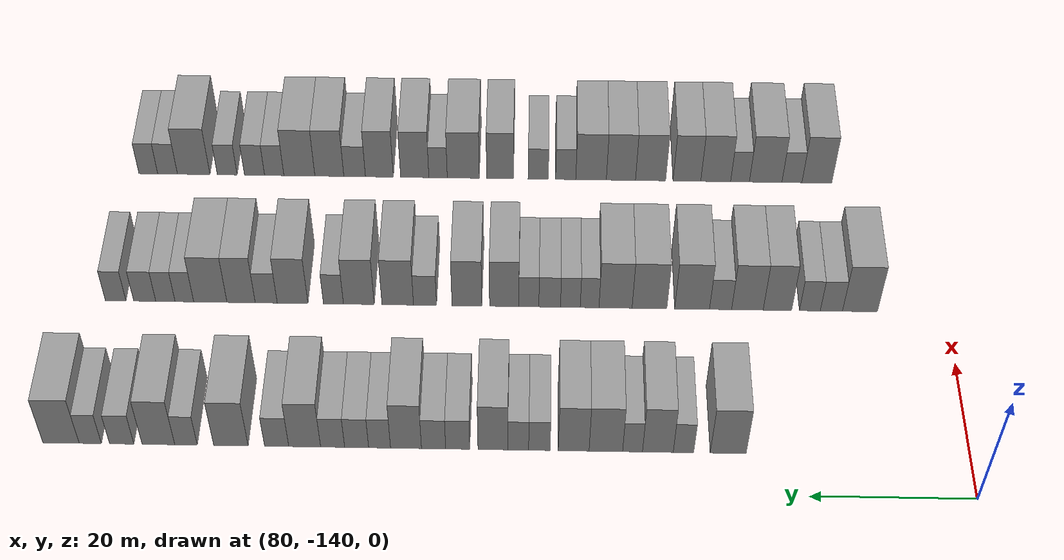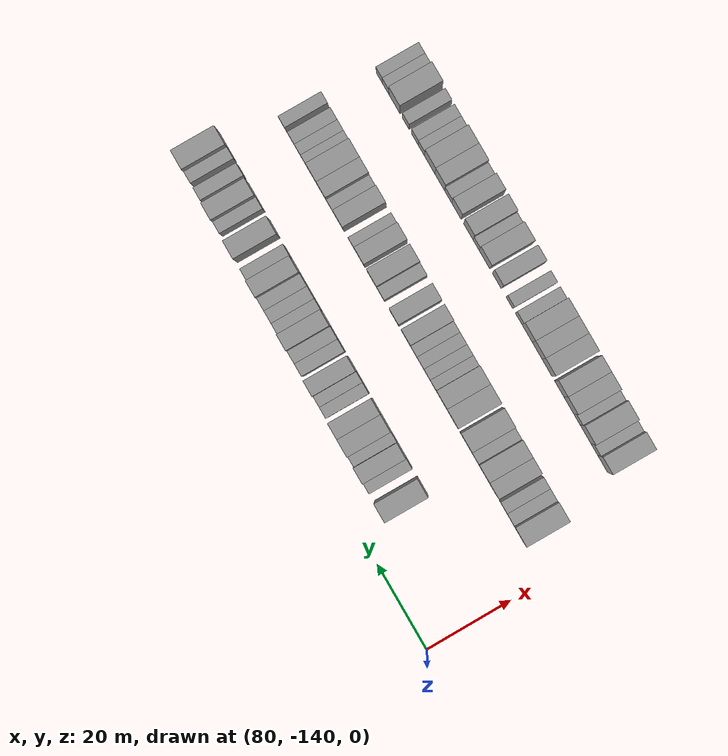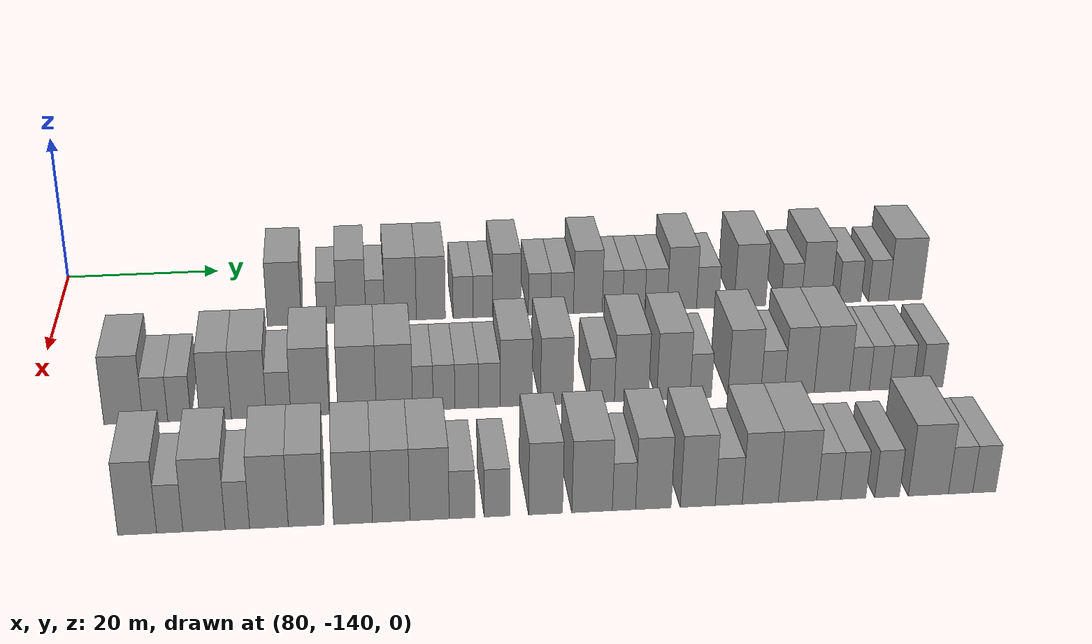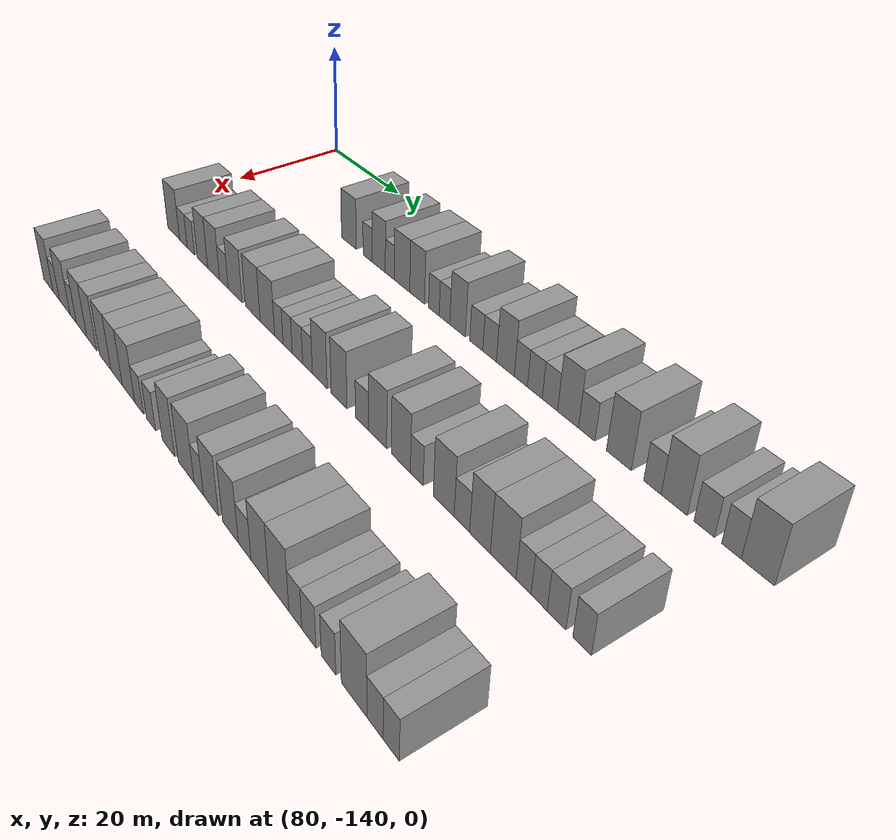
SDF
<sdf version="1.6">
 <world name="default">
  <model name="building_624">
   <static>1</static>
   <pose>91.0000 -110.6982 0 0.000000 0.000000 0.000000</pose>
   <link name="link">
    <pose>0 0 4.50 0 0 0</pose>
    <collision name="collision"><geometry><box><size>10.0000 4.3491 9.0000</size></box></geometry></collision>
    <visual name="visual">
     <cast_shadows>0</cast_shadows>
     <geometry><box><size>10.0000 4.3491 9.0000</size></box></geometry>
     <material>
      <script>
       <uri>model://grey_wall/materials/scripts</uri>
       <uri>model://grey_wall/materials/textures</uri>
       <name>vrc/grey_wall</name>
      </script>
     </material>
    </visual>
   </link>
  </model>
  <model name="building_625">
   <static>1</static>
   <pose>91.0000 -105.2833 0 0.000000 0.000000 0.000000</pose>
   <link name="link">
    <pose>0 0 3.00 0 0 0</pose>
    <collision name="collision"><geometry><box><size>10.0000 2.4807 6.0000</size></box></geometry></collision>
    <visual name="visual">
     <cast_shadows>0</cast_shadows>
     <geometry><box><size>10.0000 2.4807 6.0000</size></box></geometry>
     <material>
      <script>
       <uri>model://grey_wall/materials/scripts</uri>
       <uri>model://grey_wall/materials/textures</uri>
       <name>vrc/grey_wall</name>
      </script>
     </material>
    </visual>
   </link>
  </model>
  <model name="building_626">
   <static>1</static>
   <pose>91.0000 -102.1800 0 0.000000 0.000000 0.000000</pose>
   <link name="link">
    <pose>0 0 4.50 0 0 0</pose>
    <collision name="collision"><geometry><box><size>10.0000 3.7258 9.0000</size></box></geometry></collision>
    <visual name="visual">
     <cast_shadows>0</cast_shadows>
     <geometry><box><size>10.0000 3.7258 9.0000</size></box></geometry>
     <material>
      <script>
       <uri>model://grey_wall/materials/scripts</uri>
       <uri>model://grey_wall/materials/textures</uri>
       <name>vrc/grey_wall</name>
      </script>
     </material>
    </visual>
   </link>
  </model>
  <model name="building_627">
   <static>1</static>
   <pose>91.0000 -99.1149 0 0.000000 0.000000 0.000000</pose>
   <link name="link">
    <pose>0 0 3.00 0 0 0</pose>
    <collision name="collision"><geometry><box><size>10.0000 2.4045 6.0000</size></box></geometry></collision>
    <visual name="visual">
     <cast_shadows>0</cast_shadows>
     <geometry><box><size>10.0000 2.4045 6.0000</size></box></geometry>
     <material>
      <script>
       <uri>model://grey_wall/materials/scripts</uri>
       <uri>model://grey_wall/materials/textures</uri>
       <name>vrc/grey_wall</name>
      </script>
     </material>
    </visual>
   </link>
  </model>
  <model name="building_628">
   <static>1</static>
   <pose>91.0000 -95.8795 0 0.000000 0.000000 0.000000</pose>
   <link name="link">
    <pose>0 0 4.50 0 0 0</pose>
    <collision name="collision"><geometry><box><size>10.0000 4.0663 9.0000</size></box></geometry></collision>
    <visual name="visual">
     <cast_shadows>0</cast_shadows>
     <geometry><box><size>10.0000 4.0663 9.0000</size></box></geometry>
     <material>
      <script>
       <uri>model://grey_wall/materials/scripts</uri>
       <uri>model://grey_wall/materials/textures</uri>
       <name>vrc/grey_wall</name>
      </script>
     </material>
    </visual>
   </link>
  </model>
  <model name="building_629">
   <static>1</static>
   <pose>91.0000 -91.9789 0 0.000000 0.000000 0.000000</pose>
   <link name="link">
    <pose>0 0 4.50 0 0 0</pose>
    <collision name="collision"><geometry><box><size>10.0000 3.7349 9.0000</size></box></geometry></collision>
    <visual name="visual">
     <cast_shadows>0</cast_shadows>
     <geometry><box><size>10.0000 3.7349 9.0000</size></box></geometry>
     <material>
      <script>
       <uri>model://grey_wall/materials/scripts</uri>
       <uri>model://grey_wall/materials/textures</uri>
       <name>vrc/grey_wall</name>
      </script>
     </material>
    </visual>
   </link>
  </model>
  <model name="building_630">
   <static>1</static>
   <pose>91.0000 -87.8144 0 0.000000 0.000000 0.000000</pose>
   <link name="link">
    <pose>0 0 3.00 0 0 0</pose>
    <collision name="collision"><geometry><box><size>10.0000 2.5943 6.0000</size></box></geometry></collision>
    <visual name="visual">
     <cast_shadows>0</cast_shadows>
     <geometry><box><size>10.0000 2.5943 6.0000</size></box></geometry>
     <material>
      <script>
       <uri>model://grey_wall/materials/scripts</uri>
       <uri>model://grey_wall/materials/textures</uri>
       <name>vrc/grey_wall</name>
      </script>
     </material>
    </visual>
   </link>
  </model>
  <model name="building_631">
   <static>1</static>
   <pose>91.0000 -85.2562 0 0.000000 0.000000 0.000000</pose>
   <link name="link">
    <pose>0 0 3.00 0 0 0</pose>
    <collision name="collision"><geometry><box><size>10.0000 2.5220 6.0000</size></box></geometry></collision>
    <visual name="visual">
     <cast_shadows>0</cast_shadows>
     <geometry><box><size>10.0000 2.5220 6.0000</size></box></geometry>
     <material>
      <script>
       <uri>model://grey_wall/materials/scripts</uri>
       <uri>model://grey_wall/materials/textures</uri>
       <name>vrc/grey_wall</name>
      </script>
     </material>
    </visual>
   </link>
  </model>
  <model name="building_632">
   <static>1</static>
   <pose>91.0000 -82.1863 0 0.000000 0.000000 0.000000</pose>
   <link name="link">
    <pose>0 0 4.50 0 0 0</pose>
    <collision name="collision"><geometry><box><size>10.0000 3.6179 9.0000</size></box></geometry></collision>
    <visual name="visual">
     <cast_shadows>0</cast_shadows>
     <geometry><box><size>10.0000 3.6179 9.0000</size></box></geometry>
     <material>
      <script>
       <uri>model://grey_wall/materials/scripts</uri>
       <uri>model://grey_wall/materials/textures</uri>
       <name>vrc/grey_wall</name>
      </script>
     </material>
    </visual>
   </link>
  </model>
  <model name="building_633">
   <static>1</static>
   <pose>91.0000 -77.9174 0 0.000000 0.000000 0.000000</pose>
   <link name="link">
    <pose>0 0 3.00 0 0 0</pose>
    <collision name="collision"><geometry><box><size>10.0000 2.9199 6.0000</size></box></geometry></collision>
    <visual name="visual">
     <cast_shadows>0</cast_shadows>
     <geometry><box><size>10.0000 2.9199 6.0000</size></box></geometry>
     <material>
      <script>
       <uri>model://grey_wall/materials/scripts</uri>
       <uri>model://grey_wall/materials/textures</uri>
       <name>vrc/grey_wall</name>
      </script>
     </material>
    </visual>
   </link>
  </model>
  <model name="building_634">
   <static>1</static>
   <pose>91.0000 -74.9870 0 0.000000 0.000000 0.000000</pose>
   <link name="link">
    <pose>0 0 3.00 0 0 0</pose>
    <collision name="collision"><geometry><box><size>10.0000 2.9409 6.0000</size></box></geometry></collision>
    <visual name="visual">
     <cast_shadows>0</cast_shadows>
     <geometry><box><size>10.0000 2.9409 6.0000</size></box></geometry>
     <material>
      <script>
       <uri>model://grey_wall/materials/scripts</uri>
       <uri>model://grey_wall/materials/textures</uri>
       <name>vrc/grey_wall</name>
      </script>
     </material>
    </visual>
   </link>
  </model>
  <model name="building_635">
   <static>1</static>
   <pose>91.0000 -71.6371 0 0.000000 0.000000 0.000000</pose>
   <link name="link">
    <pose>0 0 4.50 0 0 0</pose>
    <collision name="collision"><geometry><box><size>10.0000 3.7589 9.0000</size></box></geometry></collision>
    <visual name="visual">
     <cast_shadows>0</cast_shadows>
     <geometry><box><size>10.0000 3.7589 9.0000</size></box></geometry>
     <material>
      <script>
       <uri>model://grey_wall/materials/scripts</uri>
       <uri>model://grey_wall/materials/textures</uri>
       <name>vrc/grey_wall</name>
      </script>
     </material>
    </visual>
   </link>
  </model>
  <model name="building_636">
   <static>1</static>
   <pose>91.0000 -68.4278 0 0.000000 0.000000 0.000000</pose>
   <link name="link">
    <pose>0 0 3.00 0 0 0</pose>
    <collision name="collision"><geometry><box><size>10.0000 2.6599 6.0000</size></box></geometry></collision>
    <visual name="visual">
     <cast_shadows>0</cast_shadows>
     <geometry><box><size>10.0000 2.6599 6.0000</size></box></geometry>
     <material>
      <script>
       <uri>model://grey_wall/materials/scripts</uri>
       <uri>model://grey_wall/materials/textures</uri>
       <name>vrc/grey_wall</name>
      </script>
     </material>
    </visual>
   </link>
  </model>
  <model name="building_637">
   <static>1</static>
   <pose>91.0000 -65.6392 0 0.000000 0.000000 0.000000</pose>
   <link name="link">
    <pose>0 0 3.00 0 0 0</pose>
    <collision name="collision"><geometry><box><size>10.0000 2.9174 6.0000</size></box></geometry></collision>
    <visual name="visual">
     <cast_shadows>0</cast_shadows>
     <geometry><box><size>10.0000 2.9174 6.0000</size></box></geometry>
     <material>
      <script>
       <uri>model://grey_wall/materials/scripts</uri>
       <uri>model://grey_wall/materials/textures</uri>
       <name>vrc/grey_wall</name>
      </script>
     </material>
    </visual>
   </link>
  </model>
  <model name="building_638">
   <static>1</static>
   <pose>91.0000 -62.7190 0 0.000000 0.000000 0.000000</pose>
   <link name="link">
    <pose>0 0 3.00 0 0 0</pose>
    <collision name="collision"><geometry><box><size>10.0000 2.9229 6.0000</size></box></geometry></collision>
    <visual name="visual">
     <cast_shadows>0</cast_shadows>
     <geometry><box><size>10.0000 2.9229 6.0000</size></box></geometry>
     <material>
      <script>
       <uri>model://grey_wall/materials/scripts</uri>
       <uri>model://grey_wall/materials/textures</uri>
       <name>vrc/grey_wall</name>
      </script>
     </material>
    </visual>
   </link>
  </model>
  <model name="building_639">
   <static>1</static>
   <pose>91.0000 -59.3203 0 0.000000 0.000000 0.000000</pose>
   <link name="link">
    <pose>0 0 4.50 0 0 0</pose>
    <collision name="collision"><geometry><box><size>10.0000 3.8744 9.0000</size></box></geometry></collision>
    <visual name="visual">
     <cast_shadows>0</cast_shadows>
     <geometry><box><size>10.0000 3.8744 9.0000</size></box></geometry>
     <material>
      <script>
       <uri>model://grey_wall/materials/scripts</uri>
       <uri>model://grey_wall/materials/textures</uri>
       <name>vrc/grey_wall</name>
      </script>
     </material>
    </visual>
   </link>
  </model>
  <model name="building_640">
   <static>1</static>
   <pose>91.0000 -55.9106 0 0.000000 0.000000 0.000000</pose>
   <link name="link">
    <pose>0 0 3.00 0 0 0</pose>
    <collision name="collision"><geometry><box><size>10.0000 2.9450 6.0000</size></box></geometry></collision>
    <visual name="visual">
     <cast_shadows>0</cast_shadows>
     <geometry><box><size>10.0000 2.9450 6.0000</size></box></geometry>
     <material>
      <script>
       <uri>model://grey_wall/materials/scripts</uri>
       <uri>model://grey_wall/materials/textures</uri>
       <name>vrc/grey_wall</name>
      </script>
     </material>
    </visual>
   </link>
  </model>
  <model name="building_641">
   <static>1</static>
   <pose>91.0000 -50.3419 0 0.000000 0.000000 0.000000</pose>
   <link name="link">
    <pose>0 0 4.50 0 0 0</pose>
    <collision name="collision"><geometry><box><size>10.0000 4.1923 9.0000</size></box></geometry></collision>
    <visual name="visual">
     <cast_shadows>0</cast_shadows>
     <geometry><box><size>10.0000 4.1923 9.0000</size></box></geometry>
     <material>
      <script>
       <uri>model://grey_wall/materials/scripts</uri>
       <uri>model://grey_wall/materials/textures</uri>
       <name>vrc/grey_wall</name>
      </script>
     </material>
    </visual>
   </link>
  </model>
  <model name="building_642">
   <static>1</static>
   <pose>91.0000 -44.8779 0 0.000000 0.000000 0.000000</pose>
   <link name="link">
    <pose>0 0 3.00 0 0 0</pose>
    <collision name="collision"><geometry><box><size>10.0000 2.7359 6.0000</size></box></geometry></collision>
    <visual name="visual">
     <cast_shadows>0</cast_shadows>
     <geometry><box><size>10.0000 2.7359 6.0000</size></box></geometry>
     <material>
      <script>
       <uri>model://grey_wall/materials/scripts</uri>
       <uri>model://grey_wall/materials/textures</uri>
       <name>vrc/grey_wall</name>
      </script>
     </material>
    </visual>
   </link>
  </model>
  <model name="building_643">
   <static>1</static>
   <pose>91.0000 -41.5169 0 0.000000 0.000000 0.000000</pose>
   <link name="link">
    <pose>0 0 4.50 0 0 0</pose>
    <collision name="collision"><geometry><box><size>10.0000 3.9860 9.0000</size></box></geometry></collision>
    <visual name="visual">
     <cast_shadows>0</cast_shadows>
     <geometry><box><size>10.0000 3.9860 9.0000</size></box></geometry>
     <material>
      <script>
       <uri>model://grey_wall/materials/scripts</uri>
       <uri>model://grey_wall/materials/textures</uri>
       <name>vrc/grey_wall</name>
      </script>
     </material>
    </visual>
   </link>
  </model>
  <model name="building_644">
   <static>1</static>
   <pose>91.0000 -37.0405 0 0.000000 0.000000 0.000000</pose>
   <link name="link">
    <pose>0 0 3.00 0 0 0</pose>
    <collision name="collision"><geometry><box><size>10.0000 2.9669 6.0000</size></box></geometry></collision>
    <visual name="visual">
     <cast_shadows>0</cast_shadows>
     <geometry><box><size>10.0000 2.9669 6.0000</size></box></geometry>
     <material>
      <script>
       <uri>model://grey_wall/materials/scripts</uri>
       <uri>model://grey_wall/materials/textures</uri>
       <name>vrc/grey_wall</name>
      </script>
     </material>
    </visual>
   </link>
  </model>
  <model name="building_645">
   <static>1</static>
   <pose>91.0000 -33.2021 0 0.000000 0.000000 0.000000</pose>
   <link name="link">
    <pose>0 0 3.00 0 0 0</pose>
    <collision name="collision"><geometry><box><size>10.0000 2.7098 6.0000</size></box></geometry></collision>
    <visual name="visual">
     <cast_shadows>0</cast_shadows>
     <geometry><box><size>10.0000 2.7098 6.0000</size></box></geometry>
     <material>
      <script>
       <uri>model://grey_wall/materials/scripts</uri>
       <uri>model://grey_wall/materials/textures</uri>
       <name>vrc/grey_wall</name>
      </script>
     </material>
    </visual>
   </link>
  </model>
  <model name="building_646">
   <static>1</static>
   <pose>91.0000 -29.6387 0 0.000000 0.000000 0.000000</pose>
   <link name="link">
    <pose>0 0 4.50 0 0 0</pose>
    <collision name="collision"><geometry><box><size>10.0000 4.4169 9.0000</size></box></geometry></collision>
    <visual name="visual">
     <cast_shadows>0</cast_shadows>
     <geometry><box><size>10.0000 4.4169 9.0000</size></box></geometry>
     <material>
      <script>
       <uri>model://grey_wall/materials/scripts</uri>
       <uri>model://grey_wall/materials/textures</uri>
       <name>vrc/grey_wall</name>
      </script>
     </material>
    </visual>
   </link>
  </model>
  <model name="building_807">
   <static>1</static>
   <pose>113.0000 -128.8501 0 0.000000 0.000000 0.000000</pose>
   <link name="link">
    <pose>0 0 4.50 0 0 0</pose>
    <collision name="collision"><geometry><box><size>10.0000 4.4764 9.0000</size></box></geometry></collision>
    <visual name="visual">
     <cast_shadows>0</cast_shadows>
     <geometry><box><size>10.0000 4.4764 9.0000</size></box></geometry>
     <material>
      <script>
       <uri>model://grey_wall/materials/scripts</uri>
       <uri>model://grey_wall/materials/textures</uri>
       <name>vrc/grey_wall</name>
      </script>
     </material>
    </visual>
   </link>
  </model>
  <model name="building_808">
   <static>1</static>
   <pose>113.0000 -125.1879 0 0.000000 0.000000 0.000000</pose>
   <link name="link">
    <pose>0 0 3.00 0 0 0</pose>
    <collision name="collision"><geometry><box><size>10.0000 2.8480 6.0000</size></box></geometry></collision>
    <visual name="visual">
     <cast_shadows>0</cast_shadows>
     <geometry><box><size>10.0000 2.8480 6.0000</size></box></geometry>
     <material>
      <script>
       <uri>model://grey_wall/materials/scripts</uri>
       <uri>model://grey_wall/materials/textures</uri>
       <name>vrc/grey_wall</name>
      </script>
     </material>
    </visual>
   </link>
  </model>
  <model name="building_809">
   <static>1</static>
   <pose>113.0000 -122.4275 0 0.000000 0.000000 0.000000</pose>
   <link name="link">
    <pose>0 0 3.00 0 0 0</pose>
    <collision name="collision"><geometry><box><size>10.0000 2.6729 6.0000</size></box></geometry></collision>
    <visual name="visual">
     <cast_shadows>0</cast_shadows>
     <geometry><box><size>10.0000 2.6729 6.0000</size></box></geometry>
     <material>
      <script>
       <uri>model://grey_wall/materials/scripts</uri>
       <uri>model://grey_wall/materials/textures</uri>
       <name>vrc/grey_wall</name>
      </script>
     </material>
    </visual>
   </link>
  </model>
  <model name="building_810">
   <static>1</static>
   <pose>113.0000 -118.2631 0 0.000000 0.000000 0.000000</pose>
   <link name="link">
    <pose>0 0 4.50 0 0 0</pose>
    <collision name="collision"><geometry><box><size>10.0000 3.6558 9.0000</size></box></geometry></collision>
    <visual name="visual">
     <cast_shadows>0</cast_shadows>
     <geometry><box><size>10.0000 3.6558 9.0000</size></box></geometry>
     <material>
      <script>
       <uri>model://grey_wall/materials/scripts</uri>
       <uri>model://grey_wall/materials/textures</uri>
       <name>vrc/grey_wall</name>
      </script>
     </material>
    </visual>
   </link>
  </model>
  <model name="building_811">
   <static>1</static>
   <pose>113.0000 -114.4054 0 0.000000 0.000000 0.000000</pose>
   <link name="link">
    <pose>0 0 4.50 0 0 0</pose>
    <collision name="collision"><geometry><box><size>10.0000 4.0595 9.0000</size></box></geometry></collision>
    <visual name="visual">
     <cast_shadows>0</cast_shadows>
     <geometry><box><size>10.0000 4.0595 9.0000</size></box></geometry>
     <material>
      <script>
       <uri>model://grey_wall/materials/scripts</uri>
       <uri>model://grey_wall/materials/textures</uri>
       <name>vrc/grey_wall</name>
      </script>
     </material>
    </visual>
   </link>
  </model>
  <model name="building_812">
   <static>1</static>
   <pose>113.0000 -110.9566 0 0.000000 0.000000 0.000000</pose>
   <link name="link">
    <pose>0 0 3.00 0 0 0</pose>
    <collision name="collision"><geometry><box><size>10.0000 2.8381 6.0000</size></box></geometry></collision>
    <visual name="visual">
     <cast_shadows>0</cast_shadows>
     <geometry><box><size>10.0000 2.8381 6.0000</size></box></geometry>
     <material>
      <script>
       <uri>model://grey_wall/materials/scripts</uri>
       <uri>model://grey_wall/materials/textures</uri>
       <name>vrc/grey_wall</name>
      </script>
     </material>
    </visual>
   </link>
  </model>
  <model name="building_813">
   <static>1</static>
   <pose>113.0000 -107.3014 0 0.000000 0.000000 0.000000</pose>
   <link name="link">
    <pose>0 0 4.50 0 0 0</pose>
    <collision name="collision"><geometry><box><size>10.0000 4.4723 9.0000</size></box></geometry></collision>
    <visual name="visual">
     <cast_shadows>0</cast_shadows>
     <geometry><box><size>10.0000 4.4723 9.0000</size></box></geometry>
     <material>
      <script>
       <uri>model://grey_wall/materials/scripts</uri>
       <uri>model://grey_wall/materials/textures</uri>
       <name>vrc/grey_wall</name>
      </script>
     </material>
    </visual>
   </link>
  </model>
  <model name="building_814">
   <static>1</static>
   <pose>113.0000 -101.8250 0 0.000000 0.000000 0.000000</pose>
   <link name="link">
    <pose>0 0 4.50 0 0 0</pose>
    <collision name="collision"><geometry><box><size>10.0000 4.4806 9.0000</size></box></geometry></collision>
    <visual name="visual">
     <cast_shadows>0</cast_shadows>
     <geometry><box><size>10.0000 4.4806 9.0000</size></box></geometry>
     <material>
      <script>
       <uri>model://grey_wall/materials/scripts</uri>
       <uri>model://grey_wall/materials/textures</uri>
       <name>vrc/grey_wall</name>
      </script>
     </material>
    </visual>
   </link>
  </model>
  <model name="building_815">
   <static>1</static>
   <pose>113.0000 -97.4550 0 0.000000 0.000000 0.000000</pose>
   <link name="link">
    <pose>0 0 4.50 0 0 0</pose>
    <collision name="collision"><geometry><box><size>10.0000 4.2593 9.0000</size></box></geometry></collision>
    <visual name="visual">
     <cast_shadows>0</cast_shadows>
     <geometry><box><size>10.0000 4.2593 9.0000</size></box></geometry>
     <material>
      <script>
       <uri>model://grey_wall/materials/scripts</uri>
       <uri>model://grey_wall/materials/textures</uri>
       <name>vrc/grey_wall</name>
      </script>
     </material>
    </visual>
   </link>
  </model>
  <model name="building_816">
   <static>1</static>
   <pose>113.0000 -94.1208 0 0.000000 0.000000 0.000000</pose>
   <link name="link">
    <pose>0 0 3.00 0 0 0</pose>
    <collision name="collision"><geometry><box><size>10.0000 2.4091 6.0000</size></box></geometry></collision>
    <visual name="visual">
     <cast_shadows>0</cast_shadows>
     <geometry><box><size>10.0000 2.4091 6.0000</size></box></geometry>
     <material>
      <script>
       <uri>model://grey_wall/materials/scripts</uri>
       <uri>model://grey_wall/materials/textures</uri>
       <name>vrc/grey_wall</name>
      </script>
     </material>
    </visual>
   </link>
  </model>
  <model name="building_817">
   <static>1</static>
   <pose>113.0000 -91.6445 0 0.000000 0.000000 0.000000</pose>
   <link name="link">
    <pose>0 0 3.00 0 0 0</pose>
    <collision name="collision"><geometry><box><size>10.0000 2.5435 6.0000</size></box></geometry></collision>
    <visual name="visual">
     <cast_shadows>0</cast_shadows>
     <geometry><box><size>10.0000 2.5435 6.0000</size></box></geometry>
     <material>
      <script>
       <uri>model://grey_wall/materials/scripts</uri>
       <uri>model://grey_wall/materials/textures</uri>
       <name>vrc/grey_wall</name>
      </script>
     </material>
    </visual>
   </link>
  </model>
  <model name="building_818">
   <static>1</static>
   <pose>113.0000 -88.9795 0 0.000000 0.000000 0.000000</pose>
   <link name="link">
    <pose>0 0 3.00 0 0 0</pose>
    <collision name="collision"><geometry><box><size>10.0000 2.7866 6.0000</size></box></geometry></collision>
    <visual name="visual">
     <cast_shadows>0</cast_shadows>
     <geometry><box><size>10.0000 2.7866 6.0000</size></box></geometry>
     <material>
      <script>
       <uri>model://grey_wall/materials/scripts</uri>
       <uri>model://grey_wall/materials/textures</uri>
       <name>vrc/grey_wall</name>
      </script>
     </material>
    </visual>
   </link>
  </model>
  <model name="building_819">
   <static>1</static>
   <pose>113.0000 -86.3014 0 0.000000 0.000000 0.000000</pose>
   <link name="link">
    <pose>0 0 3.00 0 0 0</pose>
    <collision name="collision"><geometry><box><size>10.0000 2.5696 6.0000</size></box></geometry></collision>
    <visual name="visual">
     <cast_shadows>0</cast_shadows>
     <geometry><box><size>10.0000 2.5696 6.0000</size></box></geometry>
     <material>
      <script>
       <uri>model://grey_wall/materials/scripts</uri>
       <uri>model://grey_wall/materials/textures</uri>
       <name>vrc/grey_wall</name>
      </script>
     </material>
    </visual>
   </link>
  </model>
  <model name="building_820">
   <static>1</static>
   <pose>113.0000 -83.1354 0 0.000000 0.000000 0.000000</pose>
   <link name="link">
    <pose>0 0 4.50 0 0 0</pose>
    <collision name="collision"><geometry><box><size>10.0000 3.7624 9.0000</size></box></geometry></collision>
    <visual name="visual">
     <cast_shadows>0</cast_shadows>
     <geometry><box><size>10.0000 3.7624 9.0000</size></box></geometry>
     <material>
      <script>
       <uri>model://grey_wall/materials/scripts</uri>
       <uri>model://grey_wall/materials/textures</uri>
       <name>vrc/grey_wall</name>
      </script>
     </material>
    </visual>
   </link>
  </model>
  <model name="building_821">
   <static>1</static>
   <pose>113.0000 -78.3351 0 0.000000 0.000000 0.000000</pose>
   <link name="link">
    <pose>0 0 4.50 0 0 0</pose>
    <collision name="collision"><geometry><box><size>10.0000 3.8381 9.0000</size></box></geometry></collision>
    <visual name="visual">
     <cast_shadows>0</cast_shadows>
     <geometry><box><size>10.0000 3.8381 9.0000</size></box></geometry>
     <material>
      <script>
       <uri>model://grey_wall/materials/scripts</uri>
       <uri>model://grey_wall/materials/textures</uri>
       <name>vrc/grey_wall</name>
      </script>
     </material>
    </visual>
   </link>
  </model>
  <model name="building_822">
   <static>1</static>
   <pose>113.0000 -72.9319 0 0.000000 0.000000 0.000000</pose>
   <link name="link">
    <pose>0 0 3.00 0 0 0</pose>
    <collision name="collision"><geometry><box><size>10.0000 2.9683 6.0000</size></box></geometry></collision>
    <visual name="visual">
     <cast_shadows>0</cast_shadows>
     <geometry><box><size>10.0000 2.9683 6.0000</size></box></geometry>
     <material>
      <script>
       <uri>model://grey_wall/materials/scripts</uri>
       <uri>model://grey_wall/materials/textures</uri>
       <name>vrc/grey_wall</name>
      </script>
     </material>
    </visual>
   </link>
  </model>
  <model name="building_823">
   <static>1</static>
   <pose>113.0000 -69.4170 0 0.000000 0.000000 0.000000</pose>
   <link name="link">
    <pose>0 0 4.50 0 0 0</pose>
    <collision name="collision"><geometry><box><size>10.0000 4.0616 9.0000</size></box></geometry></collision>
    <visual name="visual">
     <cast_shadows>0</cast_shadows>
     <geometry><box><size>10.0000 4.0616 9.0000</size></box></geometry>
     <material>
      <script>
       <uri>model://grey_wall/materials/scripts</uri>
       <uri>model://grey_wall/materials/textures</uri>
       <name>vrc/grey_wall</name>
      </script>
     </material>
    </visual>
   </link>
  </model>
  <model name="building_824">
   <static>1</static>
   <pose>113.0000 -64.3971 0 0.000000 0.000000 0.000000</pose>
   <link name="link">
    <pose>0 0 4.50 0 0 0</pose>
    <collision name="collision"><geometry><box><size>10.0000 3.9782 9.0000</size></box></geometry></collision>
    <visual name="visual">
     <cast_shadows>0</cast_shadows>
     <geometry><box><size>10.0000 3.9782 9.0000</size></box></geometry>
     <material>
      <script>
       <uri>model://grey_wall/materials/scripts</uri>
       <uri>model://grey_wall/materials/textures</uri>
       <name>vrc/grey_wall</name>
      </script>
     </material>
    </visual>
   </link>
  </model>
  <model name="building_825">
   <static>1</static>
   <pose>113.0000 -61.1209 0 0.000000 0.000000 0.000000</pose>
   <link name="link">
    <pose>0 0 3.00 0 0 0</pose>
    <collision name="collision"><geometry><box><size>10.0000 2.5741 6.0000</size></box></geometry></collision>
    <visual name="visual">
     <cast_shadows>0</cast_shadows>
     <geometry><box><size>10.0000 2.5741 6.0000</size></box></geometry>
     <material>
      <script>
       <uri>model://grey_wall/materials/scripts</uri>
       <uri>model://grey_wall/materials/textures</uri>
       <name>vrc/grey_wall</name>
      </script>
     </material>
    </visual>
   </link>
  </model>
  <model name="building_826">
   <static>1</static>
   <pose>113.0000 -55.8500 0 0.000000 0.000000 0.000000</pose>
   <link name="link">
    <pose>0 0 4.50 0 0 0</pose>
    <collision name="collision"><geometry><box><size>10.0000 3.9676 9.0000</size></box></geometry></collision>
    <visual name="visual">
     <cast_shadows>0</cast_shadows>
     <geometry><box><size>10.0000 3.9676 9.0000</size></box></geometry>
     <material>
      <script>
       <uri>model://grey_wall/materials/scripts</uri>
       <uri>model://grey_wall/materials/textures</uri>
       <name>vrc/grey_wall</name>
      </script>
     </material>
    </visual>
   </link>
  </model>
  <model name="building_827">
   <static>1</static>
   <pose>113.0000 -52.4454 0 0.000000 0.000000 0.000000</pose>
   <link name="link">
    <pose>0 0 3.00 0 0 0</pose>
    <collision name="collision"><geometry><box><size>10.0000 2.8417 6.0000</size></box></geometry></collision>
    <visual name="visual">
     <cast_shadows>0</cast_shadows>
     <geometry><box><size>10.0000 2.8417 6.0000</size></box></geometry>
     <material>
      <script>
       <uri>model://grey_wall/materials/scripts</uri>
       <uri>model://grey_wall/materials/textures</uri>
       <name>vrc/grey_wall</name>
      </script>
     </material>
    </visual>
   </link>
  </model>
  <model name="building_828">
   <static>1</static>
   <pose>113.0000 -49.1995 0 0.000000 0.000000 0.000000</pose>
   <link name="link">
    <pose>0 0 4.50 0 0 0</pose>
    <collision name="collision"><geometry><box><size>10.0000 3.6501 9.0000</size></box></geometry></collision>
    <visual name="visual">
     <cast_shadows>0</cast_shadows>
     <geometry><box><size>10.0000 3.6501 9.0000</size></box></geometry>
     <material>
      <script>
       <uri>model://grey_wall/materials/scripts</uri>
       <uri>model://grey_wall/materials/textures</uri>
       <name>vrc/grey_wall</name>
      </script>
     </material>
    </visual>
   </link>
  </model>
  <model name="building_829">
   <static>1</static>
   <pose>113.0000 -45.2208 0 0.000000 0.000000 0.000000</pose>
   <link name="link">
    <pose>0 0 4.50 0 0 0</pose>
    <collision name="collision"><geometry><box><size>10.0000 4.3074 9.0000</size></box></geometry></collision>
    <visual name="visual">
     <cast_shadows>0</cast_shadows>
     <geometry><box><size>10.0000 4.3074 9.0000</size></box></geometry>
     <material>
      <script>
       <uri>model://grey_wall/materials/scripts</uri>
       <uri>model://grey_wall/materials/textures</uri>
       <name>vrc/grey_wall</name>
      </script>
     </material>
    </visual>
   </link>
  </model>
  <model name="building_830">
   <static>1</static>
   <pose>113.0000 -41.8632 0 0.000000 0.000000 0.000000</pose>
   <link name="link">
    <pose>0 0 3.00 0 0 0</pose>
    <collision name="collision"><geometry><box><size>10.0000 2.4077 6.0000</size></box></geometry></collision>
    <visual name="visual">
     <cast_shadows>0</cast_shadows>
     <geometry><box><size>10.0000 2.4077 6.0000</size></box></geometry>
     <material>
      <script>
       <uri>model://grey_wall/materials/scripts</uri>
       <uri>model://grey_wall/materials/textures</uri>
       <name>vrc/grey_wall</name>
      </script>
     </material>
    </visual>
   </link>
  </model>
  <model name="building_831">
   <static>1</static>
   <pose>113.0000 -39.4110 0 0.000000 0.000000 0.000000</pose>
   <link name="link">
    <pose>0 0 3.00 0 0 0</pose>
    <collision name="collision"><geometry><box><size>10.0000 2.4968 6.0000</size></box></geometry></collision>
    <visual name="visual">
     <cast_shadows>0</cast_shadows>
     <geometry><box><size>10.0000 2.4968 6.0000</size></box></geometry>
     <material>
      <script>
       <uri>model://grey_wall/materials/scripts</uri>
       <uri>model://grey_wall/materials/textures</uri>
       <name>vrc/grey_wall</name>
      </script>
     </material>
    </visual>
   </link>
  </model>
  <model name="building_832">
   <static>1</static>
   <pose>113.0000 -36.7355 0 0.000000 0.000000 0.000000</pose>
   <link name="link">
    <pose>0 0 3.00 0 0 0</pose>
    <collision name="collision"><geometry><box><size>10.0000 2.8541 6.0000</size></box></geometry></collision>
    <visual name="visual">
     <cast_shadows>0</cast_shadows>
     <geometry><box><size>10.0000 2.8541 6.0000</size></box></geometry>
     <material>
      <script>
       <uri>model://grey_wall/materials/scripts</uri>
       <uri>model://grey_wall/materials/textures</uri>
       <name>vrc/grey_wall</name>
      </script>
     </material>
    </visual>
   </link>
  </model>
  <model name="building_833">
   <static>1</static>
   <pose>113.0000 -32.9774 0 0.000000 0.000000 0.000000</pose>
   <link name="link">
    <pose>0 0 3.00 0 0 0</pose>
    <collision name="collision"><geometry><box><size>10.0000 2.6620 6.0000</size></box></geometry></collision>
    <visual name="visual">
     <cast_shadows>0</cast_shadows>
     <geometry><box><size>10.0000 2.6620 6.0000</size></box></geometry>
     <material>
      <script>
       <uri>model://grey_wall/materials/scripts</uri>
       <uri>model://grey_wall/materials/textures</uri>
       <name>vrc/grey_wall</name>
      </script>
     </material>
    </visual>
   </link>
  </model>
  <model name="building_996">
   <static>1</static>
   <pose>135.0000 -125.2295 0 0.000000 0.000000 0.000000</pose>
   <link name="link">
    <pose>0 0 4.50 0 0 0</pose>
    <collision name="collision"><geometry><box><size>10.0000 4.0459 9.0000</size></box></geometry></collision>
    <visual name="visual">
     <cast_shadows>0</cast_shadows>
     <geometry><box><size>10.0000 4.0459 9.0000</size></box></geometry>
     <material>
      <script>
       <uri>model://grey_wall/materials/scripts</uri>
       <uri>model://grey_wall/materials/textures</uri>
       <name>vrc/grey_wall</name>
      </script>
     </material>
    </visual>
   </link>
  </model>
  <model name="building_997">
   <static>1</static>
   <pose>135.0000 -121.8438 0 0.000000 0.000000 0.000000</pose>
   <link name="link">
    <pose>0 0 3.00 0 0 0</pose>
    <collision name="collision"><geometry><box><size>10.0000 2.7254 6.0000</size></box></geometry></collision>
    <visual name="visual">
     <cast_shadows>0</cast_shadows>
     <geometry><box><size>10.0000 2.7254 6.0000</size></box></geometry>
     <material>
      <script>
       <uri>model://grey_wall/materials/scripts</uri>
       <uri>model://grey_wall/materials/textures</uri>
       <name>vrc/grey_wall</name>
      </script>
     </material>
    </visual>
   </link>
  </model>
  <model name="building_998">
   <static>1</static>
   <pose>135.0000 -118.2723 0 0.000000 0.000000 0.000000</pose>
   <link name="link">
    <pose>0 0 4.50 0 0 0</pose>
    <collision name="collision"><geometry><box><size>10.0000 4.4176 9.0000</size></box></geometry></collision>
    <visual name="visual">
     <cast_shadows>0</cast_shadows>
     <geometry><box><size>10.0000 4.4176 9.0000</size></box></geometry>
     <material>
      <script>
       <uri>model://grey_wall/materials/scripts</uri>
       <uri>model://grey_wall/materials/textures</uri>
       <name>vrc/grey_wall</name>
      </script>
     </material>
    </visual>
   </link>
  </model>
  <model name="building_999">
   <static>1</static>
   <pose>135.0000 -114.7907 0 0.000000 0.000000 0.000000</pose>
   <link name="link">
    <pose>0 0 3.00 0 0 0</pose>
    <collision name="collision"><geometry><box><size>10.0000 2.5456 6.0000</size></box></geometry></collision>
    <visual name="visual">
     <cast_shadows>0</cast_shadows>
     <geometry><box><size>10.0000 2.5456 6.0000</size></box></geometry>
     <material>
      <script>
       <uri>model://grey_wall/materials/scripts</uri>
       <uri>model://grey_wall/materials/textures</uri>
       <name>vrc/grey_wall</name>
      </script>
     </material>
    </visual>
   </link>
  </model>
  <model name="building_1000">
   <static>1</static>
   <pose>135.0000 -111.4874 0 0.000000 0.000000 0.000000</pose>
   <link name="link">
    <pose>0 0 4.50 0 0 0</pose>
    <collision name="collision"><geometry><box><size>10.0000 4.0611 9.0000</size></box></geometry></collision>
    <visual name="visual">
     <cast_shadows>0</cast_shadows>
     <geometry><box><size>10.0000 4.0611 9.0000</size></box></geometry>
     <material>
      <script>
       <uri>model://grey_wall/materials/scripts</uri>
       <uri>model://grey_wall/materials/textures</uri>
       <name>vrc/grey_wall</name>
      </script>
     </material>
    </visual>
   </link>
  </model>
  <model name="building_1001">
   <static>1</static>
   <pose>135.0000 -107.5698 0 0.000000 0.000000 0.000000</pose>
   <link name="link">
    <pose>0 0 4.50 0 0 0</pose>
    <collision name="collision"><geometry><box><size>10.0000 3.7740 9.0000</size></box></geometry></collision>
    <visual name="visual">
     <cast_shadows>0</cast_shadows>
     <geometry><box><size>10.0000 3.7740 9.0000</size></box></geometry>
     <material>
      <script>
       <uri>model://grey_wall/materials/scripts</uri>
       <uri>model://grey_wall/materials/textures</uri>
       <name>vrc/grey_wall</name>
      </script>
     </material>
    </visual>
   </link>
  </model>
  <model name="building_1002">
   <static>1</static>
   <pose>135.0000 -102.6315 0 0.000000 0.000000 0.000000</pose>
   <link name="link">
    <pose>0 0 4.50 0 0 0</pose>
    <collision name="collision"><geometry><box><size>10.0000 4.1027 9.0000</size></box></geometry></collision>
    <visual name="visual">
     <cast_shadows>0</cast_shadows>
     <geometry><box><size>10.0000 4.1027 9.0000</size></box></geometry>
     <material>
      <script>
       <uri>model://grey_wall/materials/scripts</uri>
       <uri>model://grey_wall/materials/textures</uri>
       <name>vrc/grey_wall</name>
      </script>
     </material>
    </visual>
   </link>
  </model>
  <model name="building_1003">
   <static>1</static>
   <pose>135.0000 -98.5986 0 0.000000 0.000000 0.000000</pose>
   <link name="link">
    <pose>0 0 4.50 0 0 0</pose>
    <collision name="collision"><geometry><box><size>10.0000 3.9630 9.0000</size></box></geometry></collision>
    <visual name="visual">
     <cast_shadows>0</cast_shadows>
     <geometry><box><size>10.0000 3.9630 9.0000</size></box></geometry>
     <material>
      <script>
       <uri>model://grey_wall/materials/scripts</uri>
       <uri>model://grey_wall/materials/textures</uri>
       <name>vrc/grey_wall</name>
      </script>
     </material>
    </visual>
   </link>
  </model>
  <model name="building_1004">
   <static>1</static>
   <pose>135.0000 -94.5341 0 0.000000 0.000000 0.000000</pose>
   <link name="link">
    <pose>0 0 4.50 0 0 0</pose>
    <collision name="collision"><geometry><box><size>10.0000 4.1659 9.0000</size></box></geometry></collision>
    <visual name="visual">
     <cast_shadows>0</cast_shadows>
     <geometry><box><size>10.0000 4.1659 9.0000</size></box></geometry>
     <material>
      <script>
       <uri>model://grey_wall/materials/scripts</uri>
       <uri>model://grey_wall/materials/textures</uri>
       <name>vrc/grey_wall</name>
      </script>
     </material>
    </visual>
   </link>
  </model>
  <model name="building_1005">
   <static>1</static>
   <pose>135.0000 -91.0810 0 0.000000 0.000000 0.000000</pose>
   <link name="link">
    <pose>0 0 3.00 0 0 0</pose>
    <collision name="collision"><geometry><box><size>10.0000 2.7403 6.0000</size></box></geometry></collision>
    <visual name="visual">
     <cast_shadows>0</cast_shadows>
     <geometry><box><size>10.0000 2.7403 6.0000</size></box></geometry>
     <material>
      <script>
       <uri>model://grey_wall/materials/scripts</uri>
       <uri>model://grey_wall/materials/textures</uri>
       <name>vrc/grey_wall</name>
      </script>
     </material>
    </visual>
   </link>
  </model>
  <model name="building_1006">
   <static>1</static>
   <pose>135.0000 -87.3403 0 0.000000 0.000000 0.000000</pose>
   <link name="link">
    <pose>0 0 3.00 0 0 0</pose>
    <collision name="collision"><geometry><box><size>10.0000 2.7412 6.0000</size></box></geometry></collision>
    <visual name="visual">
     <cast_shadows>0</cast_shadows>
     <geometry><box><size>10.0000 2.7412 6.0000</size></box></geometry>
     <material>
      <script>
       <uri>model://grey_wall/materials/scripts</uri>
       <uri>model://grey_wall/materials/textures</uri>
       <name>vrc/grey_wall</name>
      </script>
     </material>
    </visual>
   </link>
  </model>
  <model name="building_1007">
   <static>1</static>
   <pose>135.0000 -82.1443 0 0.000000 0.000000 0.000000</pose>
   <link name="link">
    <pose>0 0 4.50 0 0 0</pose>
    <collision name="collision"><geometry><box><size>10.0000 3.6507 9.0000</size></box></geometry></collision>
    <visual name="visual">
     <cast_shadows>0</cast_shadows>
     <geometry><box><size>10.0000 3.6507 9.0000</size></box></geometry>
     <material>
      <script>
       <uri>model://grey_wall/materials/scripts</uri>
       <uri>model://grey_wall/materials/textures</uri>
       <name>vrc/grey_wall</name>
      </script>
     </material>
    </visual>
   </link>
  </model>
  <model name="building_1008">
   <static>1</static>
   <pose>135.0000 -77.1370 0 0.000000 0.000000 0.000000</pose>
   <link name="link">
    <pose>0 0 4.50 0 0 0</pose>
    <collision name="collision"><geometry><box><size>10.0000 4.3639 9.0000</size></box></geometry></collision>
    <visual name="visual">
     <cast_shadows>0</cast_shadows>
     <geometry><box><size>10.0000 4.3639 9.0000</size></box></geometry>
     <material>
      <script>
       <uri>model://grey_wall/materials/scripts</uri>
       <uri>model://grey_wall/materials/textures</uri>
       <name>vrc/grey_wall</name>
      </script>
     </material>
    </visual>
   </link>
  </model>
  <model name="building_1009">
   <static>1</static>
   <pose>135.0000 -73.6992 0 0.000000 0.000000 0.000000</pose>
   <link name="link">
    <pose>0 0 3.00 0 0 0</pose>
    <collision name="collision"><geometry><box><size>10.0000 2.5117 6.0000</size></box></geometry></collision>
    <visual name="visual">
     <cast_shadows>0</cast_shadows>
     <geometry><box><size>10.0000 2.5117 6.0000</size></box></geometry>
     <material>
      <script>
       <uri>model://grey_wall/materials/scripts</uri>
       <uri>model://grey_wall/materials/textures</uri>
       <name>vrc/grey_wall</name>
      </script>
     </material>
    </visual>
   </link>
  </model>
  <model name="building_1010">
   <static>1</static>
   <pose>135.0000 -70.5207 0 0.000000 0.000000 0.000000</pose>
   <link name="link">
    <pose>0 0 4.50 0 0 0</pose>
    <collision name="collision"><geometry><box><size>10.0000 3.8454 9.0000</size></box></geometry></collision>
    <visual name="visual">
     <cast_shadows>0</cast_shadows>
     <geometry><box><size>10.0000 3.8454 9.0000</size></box></geometry>
     <material>
      <script>
       <uri>model://grey_wall/materials/scripts</uri>
       <uri>model://grey_wall/materials/textures</uri>
       <name>vrc/grey_wall</name>
      </script>
     </material>
    </visual>
   </link>
  </model>
  <model name="building_1011">
   <static>1</static>
   <pose>135.0000 -65.6963 0 0.000000 0.000000 0.000000</pose>
   <link name="link">
    <pose>0 0 4.50 0 0 0</pose>
    <collision name="collision"><geometry><box><size>10.0000 3.8034 9.0000</size></box></geometry></collision>
    <visual name="visual">
     <cast_shadows>0</cast_shadows>
     <geometry><box><size>10.0000 3.8034 9.0000</size></box></geometry>
     <material>
      <script>
       <uri>model://grey_wall/materials/scripts</uri>
       <uri>model://grey_wall/materials/textures</uri>
       <name>vrc/grey_wall</name>
      </script>
     </material>
    </visual>
   </link>
  </model>
  <model name="building_1012">
   <static>1</static>
   <pose>135.0000 -62.3205 0 0.000000 0.000000 0.000000</pose>
   <link name="link">
    <pose>0 0 3.00 0 0 0</pose>
    <collision name="collision"><geometry><box><size>10.0000 2.9481 6.0000</size></box></geometry></collision>
    <visual name="visual">
     <cast_shadows>0</cast_shadows>
     <geometry><box><size>10.0000 2.9481 6.0000</size></box></geometry>
     <material>
      <script>
       <uri>model://grey_wall/materials/scripts</uri>
       <uri>model://grey_wall/materials/textures</uri>
       <name>vrc/grey_wall</name>
      </script>
     </material>
    </visual>
   </link>
  </model>
  <model name="building_1013">
   <static>1</static>
   <pose>135.0000 -58.8689 0 0.000000 0.000000 0.000000</pose>
   <link name="link">
    <pose>0 0 4.50 0 0 0</pose>
    <collision name="collision"><geometry><box><size>10.0000 3.9552 9.0000</size></box></geometry></collision>
    <visual name="visual">
     <cast_shadows>0</cast_shadows>
     <geometry><box><size>10.0000 3.9552 9.0000</size></box></geometry>
     <material>
      <script>
       <uri>model://grey_wall/materials/scripts</uri>
       <uri>model://grey_wall/materials/textures</uri>
       <name>vrc/grey_wall</name>
      </script>
     </material>
    </visual>
   </link>
  </model>
  <model name="building_1014">
   <static>1</static>
   <pose>135.0000 -54.7764 0 0.000000 0.000000 0.000000</pose>
   <link name="link">
    <pose>0 0 4.50 0 0 0</pose>
    <collision name="collision"><geometry><box><size>10.0000 4.2299 9.0000</size></box></geometry></collision>
    <visual name="visual">
     <cast_shadows>0</cast_shadows>
     <geometry><box><size>10.0000 4.2299 9.0000</size></box></geometry>
     <material>
      <script>
       <uri>model://grey_wall/materials/scripts</uri>
       <uri>model://grey_wall/materials/textures</uri>
       <name>vrc/grey_wall</name>
      </script>
     </material>
    </visual>
   </link>
  </model>
  <model name="building_1015">
   <static>1</static>
   <pose>135.0000 -51.3410 0 0.000000 0.000000 0.000000</pose>
   <link name="link">
    <pose>0 0 3.00 0 0 0</pose>
    <collision name="collision"><geometry><box><size>10.0000 2.6410 6.0000</size></box></geometry></collision>
    <visual name="visual">
     <cast_shadows>0</cast_shadows>
     <geometry><box><size>10.0000 2.6410 6.0000</size></box></geometry>
     <material>
      <script>
       <uri>model://grey_wall/materials/scripts</uri>
       <uri>model://grey_wall/materials/textures</uri>
       <name>vrc/grey_wall</name>
      </script>
     </material>
    </visual>
   </link>
  </model>
  <model name="building_1016">
   <static>1</static>
   <pose>135.0000 -48.6466 0 0.000000 0.000000 0.000000</pose>
   <link name="link">
    <pose>0 0 3.00 0 0 0</pose>
    <collision name="collision"><geometry><box><size>10.0000 2.7478 6.0000</size></box></geometry></collision>
    <visual name="visual">
     <cast_shadows>0</cast_shadows>
     <geometry><box><size>10.0000 2.7478 6.0000</size></box></geometry>
     <material>
      <script>
       <uri>model://grey_wall/materials/scripts</uri>
       <uri>model://grey_wall/materials/textures</uri>
       <name>vrc/grey_wall</name>
      </script>
     </material>
    </visual>
   </link>
  </model>
  <model name="building_1017">
   <static>1</static>
   <pose>135.0000 -44.9161 0 0.000000 0.000000 0.000000</pose>
   <link name="link">
    <pose>0 0 3.00 0 0 0</pose>
    <collision name="collision"><geometry><box><size>10.0000 2.7130 6.0000</size></box></geometry></collision>
    <visual name="visual">
     <cast_shadows>0</cast_shadows>
     <geometry><box><size>10.0000 2.7130 6.0000</size></box></geometry>
     <material>
      <script>
       <uri>model://grey_wall/materials/scripts</uri>
       <uri>model://grey_wall/materials/textures</uri>
       <name>vrc/grey_wall</name>
      </script>
     </material>
    </visual>
   </link>
  </model>
  <model name="building_1018">
   <static>1</static>
   <pose>135.0000 -40.3346 0 0.000000 0.000000 0.000000</pose>
   <link name="link">
    <pose>0 0 4.50 0 0 0</pose>
    <collision name="collision"><geometry><box><size>10.0000 4.4500 9.0000</size></box></geometry></collision>
    <visual name="visual">
     <cast_shadows>0</cast_shadows>
     <geometry><box><size>10.0000 4.4500 9.0000</size></box></geometry>
     <material>
      <script>
       <uri>model://grey_wall/materials/scripts</uri>
       <uri>model://grey_wall/materials/textures</uri>
       <name>vrc/grey_wall</name>
      </script>
     </material>
    </visual>
   </link>
  </model>
  <model name="building_1019">
   <static>1</static>
   <pose>135.0000 -36.7592 0 0.000000 0.000000 0.000000</pose>
   <link name="link">
    <pose>0 0 3.00 0 0 0</pose>
    <collision name="collision"><geometry><box><size>10.0000 2.7009 6.0000</size></box></geometry></collision>
    <visual name="visual">
     <cast_shadows>0</cast_shadows>
     <geometry><box><size>10.0000 2.7009 6.0000</size></box></geometry>
     <material>
      <script>
       <uri>model://grey_wall/materials/scripts</uri>
       <uri>model://grey_wall/materials/textures</uri>
       <name>vrc/grey_wall</name>
      </script>
     </material>
    </visual>
   </link>
  </model>
  <model name="building_1020">
   <static>1</static>
   <pose>135.0000 -34.1230 0 0.000000 0.000000 0.000000</pose>
   <link name="link">
    <pose>0 0 3.00 0 0 0</pose>
    <collision name="collision"><geometry><box><size>10.0000 2.5715 6.0000</size></box></geometry></collision>
    <visual name="visual">
     <cast_shadows>0</cast_shadows>
     <geometry><box><size>10.0000 2.5715 6.0000</size></box></geometry>
     <material>
      <script>
       <uri>model://grey_wall/materials/scripts</uri>
       <uri>model://grey_wall/materials/textures</uri>
       <name>vrc/grey_wall</name>
      </script>
     </material>
    </visual>
   </link>
  </model>
 </world>
</sdf>
